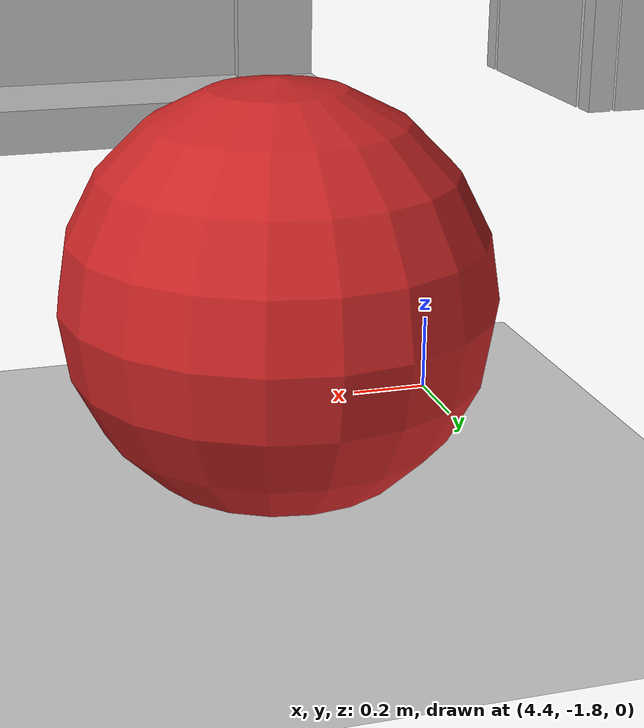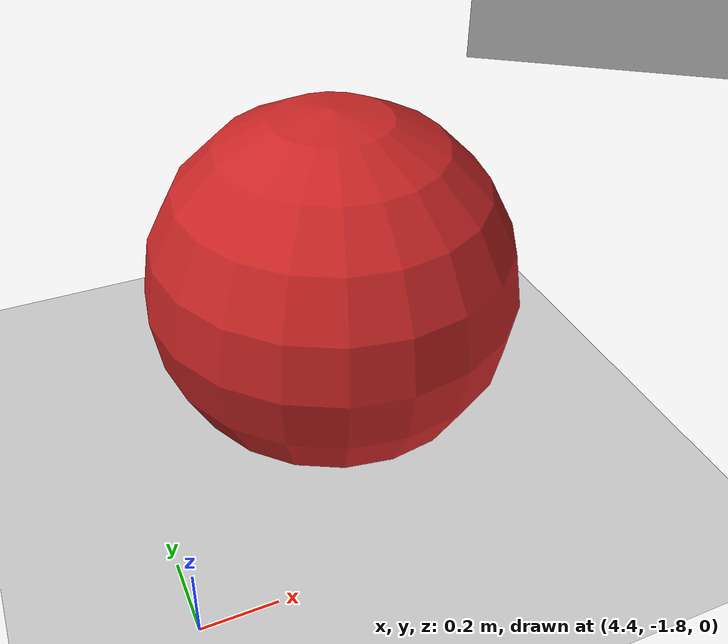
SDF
<sdf version="1.7">
 <world name="default">
  <light name="sun" type="directional">
   <pose>0 0 10 0 -0 0</pose>
   <diffuse>0.8 0.8 0.8 1</diffuse>
   <specular>0.2 0.2 0.2 1</specular>
   <attenuation>
    <range>1000</range>
    <constant>0.9</constant>
    <linear>0.01</linear>
    <quadratic>0.001</quadratic>
   </attenuation>
   <direction>-0.5 0.1 -0.9</direction>
   <spot><inner_angle>0</inner_angle><outer_angle>0</outer_angle><falloff>0</falloff></spot>
  </light>
  <model name="ground_plane">
   <static>1</static>
   <link name="link">
    <collision name="collision">
     <geometry><plane><normal>0 0 1</normal><size>100 100</size></plane></geometry>
     <surface>
      <contact><collide_bitmask>65535</collide_bitmask></contact>
      <friction><ode><mu>100</mu><mu2>50</mu2></ode></friction>
     </surface>
    </collision>
    <visual name="visual">
     <cast_shadows>0</cast_shadows>
     <geometry><plane><normal>0 0 1</normal><size>100 100</size></plane></geometry>
     <material>
      <script><uri>file://media/materials/scripts/gazebo.material</uri><name>Gazebo/Grey</name></script>
     </material>
    </visual>
   </link>
  </model>
  <gravity>0 0 -9.8</gravity>
  <magnetic_field>6e-06 2.3e-05 -4.2e-05</magnetic_field>
  <atmosphere type="adiabatic"/>
  <physics type="ode">
   <max_step_size>0.001</max_step_size>
   <real_time_factor>1</real_time_factor>
   <real_time_update_rate>1000</real_time_update_rate>
  </physics>
  <scene><ambient>0.4 0.4 0.4 1</ambient><background>0.7 0.7 0.7 1</background><shadows>0</shadows></scene>
  <audio><device>default</device></audio>
  <spherical_coordinates>
   <surface_model>EARTH_WGS84</surface_model>
   <latitude_deg>0</latitude_deg>
   <longitude_deg>0</longitude_deg>
   <elevation>0</elevation>
   <heading_deg>0</heading_deg>
  </spherical_coordinates>
  <model name="iscas_museum">
   <link name="link">
    <inertial><mass>15</mass></inertial>
    <collision name="collision">
     <pose>0 0 0 0 0 -1.57</pose>
     <geometry><mesh><uri>model://iscas_museum/meshes/ISCAS_museum.dae</uri></mesh></geometry>
    </collision>
    <visual name="visual">
     <pose>0 0 0 0 0 -1.57</pose>
     <geometry><mesh><uri>model://iscas_museum/meshes/ISCAS_museum.dae</uri></mesh></geometry>
    </visual>
   </link>
   <static>1</static>
   <pose>-0.397253 -0.177792 0 0 -0 0</pose>
  </model>
  <model name="ball">
   <pose>4.97 -1.25 0.5 0 0 0</pose>
   <link name="link">
    <inertial>
     <mass>1.0</mass>
     <inertia><ixx>0.1</ixx><ixy>0</ixy><ixz>0</ixz><iyy>0.1</iyy><iyz>0</iyz><izz>0.1</izz></inertia>
    </inertial>
    <collision name="collision">
     <geometry><sphere><radius>0.5</radius></sphere></geometry>
     <surface><friction><ode><mu>0</mu><mu2>0</mu2></ode></friction></surface>
    </collision>
    <visual name="visual">
     <geometry><sphere><radius>0.5</radius></sphere></geometry>
     <material>
      <script><uri>file://media/materials/scripts/gazebo.material</uri><name>Gazebo/Red</name></script>
     </material>
    </visual>
   </link>
   <plugin name="ball_planar_move" filename="libgazebo_ros_planar_move.so">
    <ros><namespace>/ball</namespace></ros>
    <update_rate>50</update_rate>
    <publish_rate>30</publish_rate>
    <publish_odom>true</publish_odom>
    <publish_odom_tf>false</publish_odom_tf>
    <odometry_frame>ball_odom</odometry_frame>
    <robot_base_frame>ball</robot_base_frame>
   </plugin>
  </model>
 </world>
</sdf>
